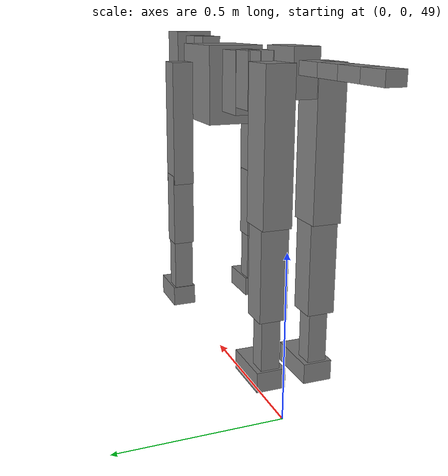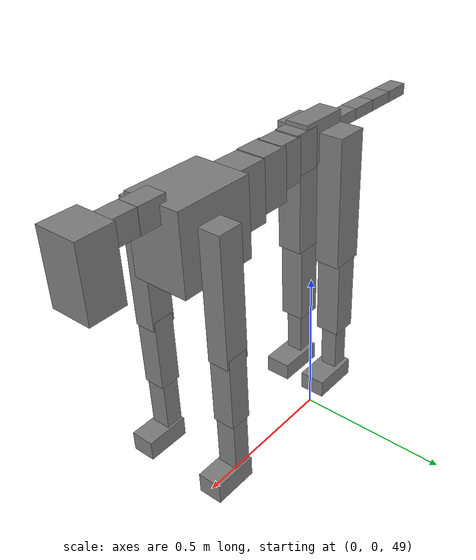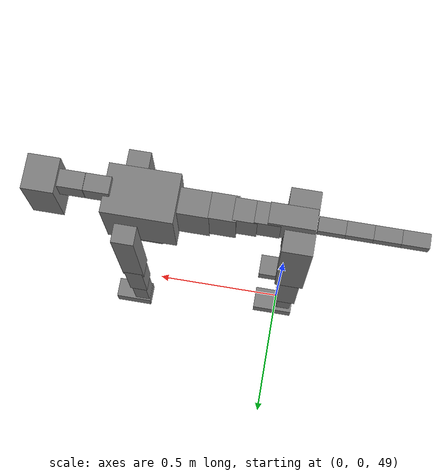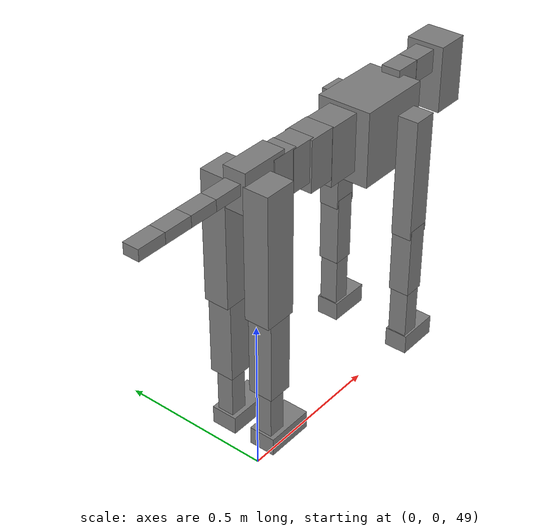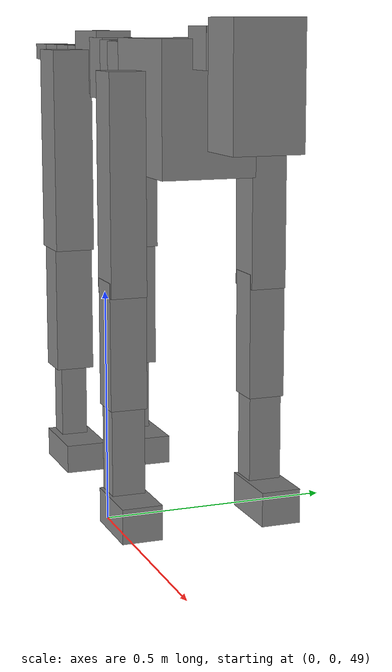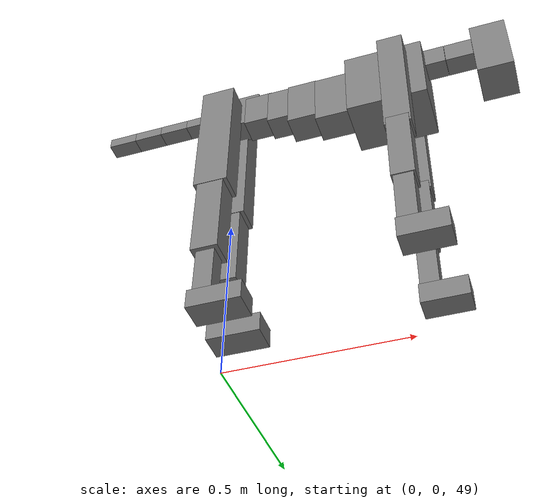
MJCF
<mujoco model="dog">

    <default>
        <joint armature="0.02" stiffness="1" damping="0.2" limited="true" />
        <geom condim="3" friction="1 0.05 0.05" margin="0.01" />
        <motor ctrllimited="true" ctrlrange="-1.0 1.0" forcelimited="true" gear="50" />
    </default>

    <compiler inertiafromgeom="true" angle="radian" />

    <option timestep="0.016" iterations="50" tolerance="1e-10" solver="Newton" jacobian="dense" cone="pyramidal" />

    <size nconmax="20000" njmax="60000" nstack="5000000" />
    <visual>
        <map force="0.1" zfar="30" />
        <rgba haze="0.15 0.25 0.35 1" />
        <quality shadowsize="2048" />
        <global offwidth="800" offheight="800" />
    </visual>

    <asset>
        <texture type="skybox" builtin="gradient" rgb1="0.3 0.5 0.7" rgb2="0 0 0" width="512" height="512" />
        <texture name="texplane" type="2d" builtin="checker" rgb1=".2 .3 .4" rgb2=".1 0.15 0.2" width="512" height="512" mark="cross" markrgb=".8 .8 .8" />
        <texture name="texgeom" type="cube" builtin="flat" mark="cross" width="127" height="1278" rgb1="0.8 0.6 0.4" rgb2="0.8 0.6 0.4" markrgb="1 1 1" random="0.01" />

        <material name="matplane" reflectance="0.3" texture="texplane" texrepeat="1 1" texuniform="true" />
        <material name="matgeom" texture="texgeom" texuniform="true" rgba="0.8 0.6 .4 1" />
    </asset>

    <worldbody>
        <geom name="floor" pos="0 0 0" size="0 0 .25" type="plane" material="matplane" condim="3" />

        <light directional="false" diffuse=".2 .2 .2" specular="0 0 0" pos="0 0 5" dir="0 0 -1" castshadow="false" />
        <light mode="targetbodycom" target="torso" directional="false" diffuse=".8 .8 .8" specular="0.3 0.3 0.3" pos="0 0 4.0" dir="0 0 -1" />

        <body name="root" pos="0 0 50">
            <freejoint name="root_1" />
            <geom type="box" pos="0 0 -0.02" size="0.0774  0.0358  0.063" density="2030" />

            <body name="spine1" pos="0.054 0 0">
                <joint name="spine1_y" axis="0 1 0" range="0 0.7" limited="true" />
                <geom type="box" pos="0.02375 0 -0.03" size="0.04375  0.0375  0.05985" density="2030" />

                <body name="spine2" pos="0.0612 0 0">
                    <joint name="spine2_y" axis="0 1 0" range="-0.15 0.15" limited="true" />
                    <geom type="box" pos="0.03555  0  -0.04" size="0.04055  0.039  0.06615" density="2030" />

                    <body name="spine3" pos="0.0730 0 0">
                        <joint name="spine3_y" axis="0 1 0" range="-0.15 0.15" limited="true" />
                        <geom type="box" pos="0.03555  0  -0.057" size="0.04555  0.0445  0.081" density="2030" />

                        <body name="spine4" pos="0.0780 0 0">
                            <joint name="spine4_y" axis="0 1 0" range="-0.15 0.15" limited="true" />
                            <geom type="box" pos="0.05265  0  -0.07" size="0.05265  0.045  0.09135" density="2030" />

                            <body name="torso" pos="0.1082 0 0">
                                <joint name="torso_y" axis="0 1 0" range="-0.15 0.15" limited="true" />
                                <geom type="box" pos="0.11925  0  -0.085" size="0.11925  0.085  0.11745" density="2030" />

                                <body name="neck1" pos="0.2160  0   0.0180">
                                    <joint name="neck1_y" axis="0 1 0" range="-1.2  -1" limited="true" />
                                    <geom type="box" pos="0.0423  0  0" size="0.0423  0.03  0.036" density="2325" />

                                    <body name="neck2" pos="0.0853  0  0">
                                        <joint name="neck2_y" axis="0 1 0" range="0.1  0" limited="true" />
                                        <geom type="box" pos="0.0423  0  0" size="0.0423  0.03  0.036" density="2325" />

                                        <body name="head" pos="0.0853  0  0">
                                            <joint name="head_y" axis="0 1 0" range="-0.3  -0.2" limited="true" />
                                            <geom type="box" pos="0.0531  0  -0.055" size="0.0531  0.06  0.1044" density="4030" />

                                        </body>
                                    </body>
                                </body>

                                <body name="front_shoulder" pos="0.156  0   -0.0480">
                                    <joint name="front_shoulder_y" axis="0 1 0" range="-1 1.5" limited="true" />
                                    <geom type="box" pos="0 0.13 -0.1660" size="0.0377  0.0322  0.1926" density="1158" />
                                    <geom type="box" pos="0 -0.13 -0.1660" size="0.0377  0.0322  0.1926" density="1158" />

                                    <body name="front_elbow" pos="0  0  -0.3319">
                                        <joint name="front_elbow_y" axis="0 1 0" range="-2 0" limited="true" />
                                        <geom type="box" pos="0 0.13 -0.1131" size="0.0323  0.0330  0.1131" density="1081" />
                                        <geom type="box" pos="0 -0.13 -0.1131" size="0.0323  0.0330  0.1131" density="1081" />

                                        <body name="front_wrist" pos="0  0  -0.2262">
                                            <joint name="front_wrist_y" axis="0 1 0" range="-0.2 0" limited="true" />
                                            <geom type="box" pos="0 0.13 -0.0849" size="0.0270  0.0300  0.0981" density="1664" />
                                            <geom type="box" pos="0 -0.13 -0.0849" size="0.0270  0.0300  0.0981" density="1664" />

                                            <body name="front_finger_end" pos="0  0  -0.1698">
                                                <joint name="front_finger_y" axis="0 1 0" range="-0.4 1" limited="true" />
                                                <geom type="box" pos="0.0363  0.13  -0.0163" size="0.0665  0.0363  0.0313" density="1515" />
                                                <geom type="box" pos="0.0363  -0.13  -0.0163" size="0.0665  0.0363  0.0313" density="1515" />

                                            </body>

                                        </body>
                                    </body>
                                </body>

                            </body>
                        </body>
                    </body>
                </body>
            </body>

            <body name="back_hip" pos="-0.03 0 -0.018">
                <joint name="back_hip_y" axis="0 1 0" range="-1.5 0.3" limited="true" />
                <geom type="box" pos="0 0.07 -0.1824" size="0.0510  0.0400  0.2052" density="1154" />
                <geom type="box" pos="0 -0.07 -0.1824" size="0.0510  0.0400  0.2052" density="1154" />

                <body name="back_knee" pos="0  0  -0.3648">
                    <joint name="back_knee_y" axis="0 1 0" range="0 2.8" limited="true" />
                    <geom type="box" pos="0 0.07 -0.1303" size="0.0392  0.0386  0.1458" density="1227" />
                    <geom type="box" pos="0 -0.07 -0.1303" size="0.0392  0.0386  0.1458" density="1227" />

                    <body name="back_ankle" pos="0  0  -0.2606">
                        <joint name="back_ankle_y" axis="0 1 0" range="-2.2 0" limited="true" />
                        <geom type="box" pos="0 0.07 -0.0874" size="0.0268  0.0268  0.0987" density="1284" />
                        <geom type="box" pos="0 -0.07 -0.0874" size="0.0268  0.0268  0.0987" density="1284" />

                        <body name="back_toe_end" pos="0  0  -0.1749">
                            <joint name="back_toe_y" axis="0 1 0" range="-0.4 1" limited="true" />
                            <geom type="box" pos="0.0413  0.07  -0.0136" size="0.0757  0.0413  0.0286" density="1515" />
                            <geom type="box" pos="0.0413  -0.07  -0.0136" size="0.0757  0.0413  0.0286" density="1515" />

                        </body>
                    </body>
                </body>
            </body>

            <body name="tail1" pos="-0.074 0 -0.006">
                <joint name="tail1_y" axis="0 1 0" range="-0.2 0.2" limited="true" />
                <geom type="box" pos="-0.0536  0  0" size="0.045  0.025  0.0175" density="1587" />

                <body name="tail2" pos="-0.09 0 0">
                    <joint name="tail2_y" axis="0 1 0" range="-0.2 0.2" limited="true" />
                    <geom type="box" pos="-0.0536  0  0" size="0.045  0.025  0.0175" density="1587" />

                    <body name="tail3" pos="-0.09 0 0">
                        <joint name="tail3_y" axis="0 1 0" range="-0.2 0.2" limited="true" />
                        <geom type="box" pos="-0.0536  0  0" size="0.045  0.025  0.0175" density="1587" />

                        <body name="tail4" pos="-0.09 0 0">
                            <joint name="tail4_y" axis="0 1 0" range="-0.2 0.2" limited="true" />
                            <geom type="box" pos="-0.0536  0  0" size="0.045  0.025  0.0175" density="1587" />

                        </body>
                    </body>
                </body>
            </body>
        </body>
    </worldbody>

    <actuator>
        <motor joint="spine1_y" forcerange="-150 150     " />
        <motor joint="spine2_y" forcerange="-150 150     " />
        <motor joint="spine3_y" forcerange="-150 150     " />
        <motor joint="spine4_y" forcerange="-150 150     " />
        <motor joint="torso_y" forcerange="-150 150     " />
        <motor joint="neck1_y" forcerange="-100 100       " />
        <motor joint="neck2_y" forcerange="-100 100       " />
        <motor joint="head_y" forcerange="-150 150       " />
        <motor joint="front_shoulder_y" forcerange="-158.99 155.57" />
        <motor joint="front_elbow_y" forcerange="-167.28 172.95" />
        <motor joint="front_wrist_y" forcerange="-124.00 116.12" />
        <motor joint="front_finger_y" forcerange="-80.89 72.66" />
        <motor joint="back_hip_y" forcerange="-385.36 348.26" />
        <motor joint="back_knee_y" forcerange="-388.94 372.98" />
        <motor joint="back_angle_y" forcerange="-172.01 156.92" />
        <motor joint="back_toe_y" forcerange="-117.37 132.75" />
        <motor joint="tail1_y" forcerange="-50 50     " />
        <motor joint="tail2_y" forcerange="-50 50     " />
        <motor joint="tail3_y" forcerange="-50 50     " />
        <motor joint="tail4_y" forcerange="-50 50     " />
    </actuator>
</mujoco>
